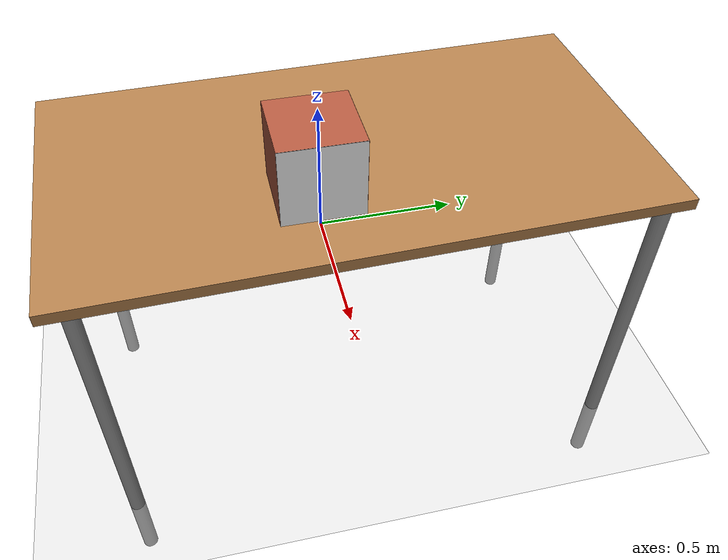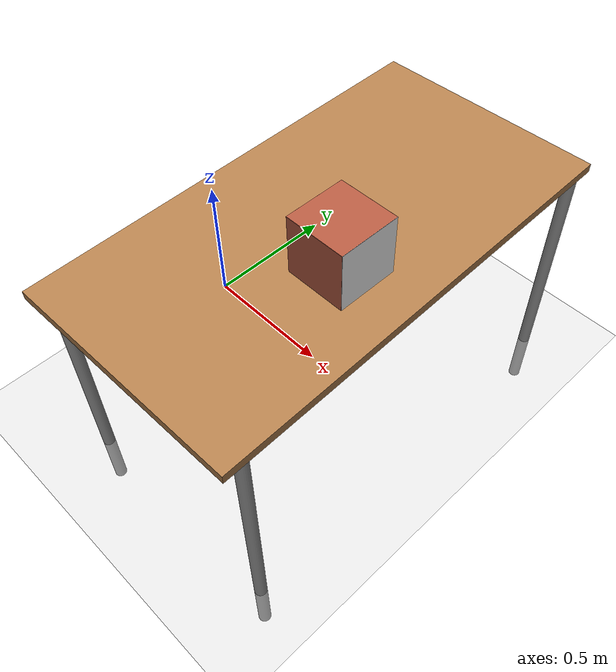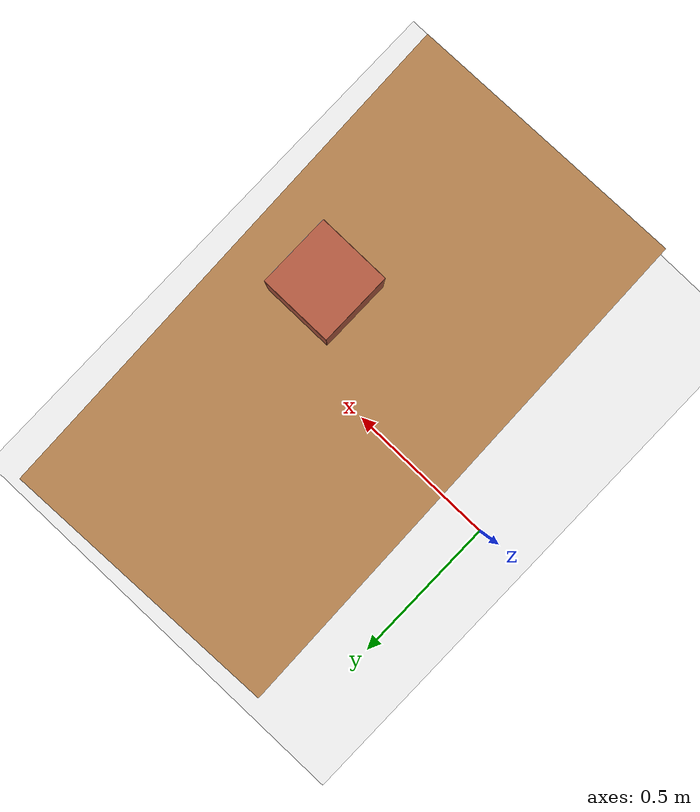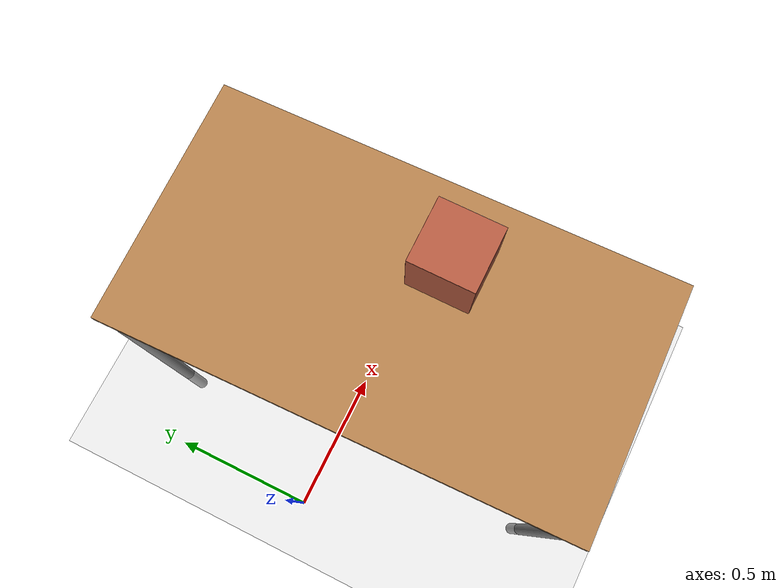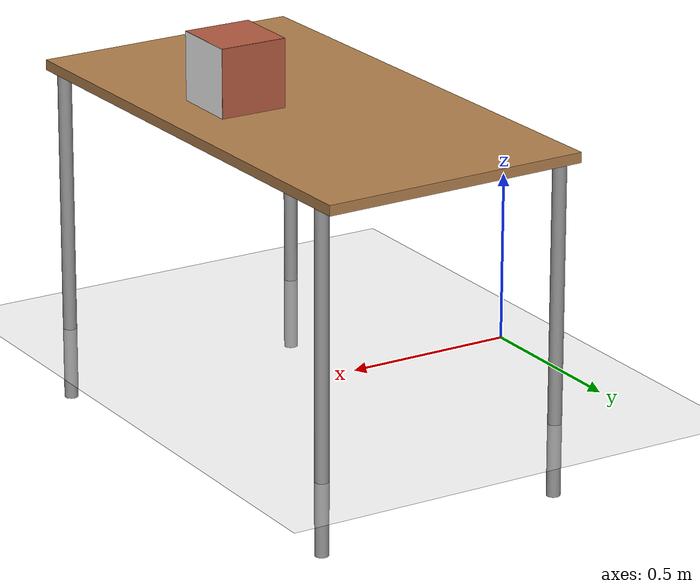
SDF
<sdf version="1.7">
 <world name="default">
  <light name="sun" type="directional">
   <pose>0 0 10 0 -0 0</pose>
   <diffuse>0.8 0.8 0.8 1</diffuse>
   <specular>0.2 0.2 0.2 1</specular>
   <attenuation>
    <range>1000</range>
    <constant>0.9</constant>
    <linear>0.01</linear>
    <quadratic>0.001</quadratic>
   </attenuation>
   <direction>-0.5 0.1 -0.9</direction>
   <spot><inner_angle>0</inner_angle><outer_angle>0</outer_angle><falloff>0</falloff></spot>
  </light>
  <model name="ground_plane">
   <static>1</static>
   <link name="link">
    <collision name="collision">
     <geometry><plane><normal>0 0 1</normal><size>100 100</size></plane></geometry>
     <surface><friction><ode><mu>100</mu><mu2>50</mu2></ode></friction></surface>
    </collision>
    <visual name="visual">
     <cast_shadows>0</cast_shadows>
     <geometry><plane><normal>0 0 1</normal><size>100 100</size></plane></geometry>
     <material>
      <script><uri>file://media/materials/scripts/gazebo.material</uri><name>Gazebo/Grey</name></script>
     </material>
    </visual>
   </link>
  </model>
  <gravity>0 0 -9.8</gravity>
  <magnetic_field>6e-06 2.3e-05 -4.2e-05</magnetic_field>
  <atmosphere type="adiabatic"/>
  <physics type="ode">
   <max_step_size>0.001</max_step_size>
   <real_time_factor>1</real_time_factor>
   <real_time_update_rate>1000</real_time_update_rate>
  </physics>
  <scene><ambient>0.8 0.8 0.8 1</ambient><background>0.7 0.7 0.7 1</background><shadows>1</shadows></scene>
  <audio><device>default</device></audio>
  <spherical_coordinates>
   <surface_model>EARTH_WGS84</surface_model>
   <latitude_deg>0</latitude_deg>
   <longitude_deg>0</longitude_deg>
   <elevation>0</elevation>
   <heading_deg>0</heading_deg>
  </spherical_coordinates>
  <model name="table">
   <static>1</static>
   <link name="link">
    <collision name="surface">
     <pose>0 0 1 0 -0 0</pose>
     <geometry><box><size>1.5 0.8 0.03</size></box></geometry>
     <surface><friction><ode><mu>0.6</mu><mu2>0.6</mu2></ode></friction></surface>
    </collision>
    <visual name="visual1">
     <pose>0 0 1 0 -0 0</pose>
     <geometry><box><size>1.5 0.8 0.03</size></box></geometry>
     <material>
      <script><uri>file://media/materials/scripts/gazebo.material</uri><name>Gazebo/Wood</name></script>
     </material>
    </visual>
    <collision name="front_left_leg">
     <pose>0.68 0.38 0.5 0 -0 0</pose>
     <geometry><cylinder><radius>0.02</radius><length>1</length></cylinder></geometry>
    </collision>
    <visual name="front_left_leg">
     <pose>0.68 0.38 0.5 0 -0 0</pose>
     <geometry><cylinder><radius>0.02</radius><length>1</length></cylinder></geometry>
     <material>
      <script><uri>file://media/materials/scripts/gazebo.material</uri><name>Gazebo/Grey</name></script>
     </material>
    </visual>
    <collision name="front_right_leg">
     <pose>0.68 -0.38 0.5 0 -0 0</pose>
     <geometry><cylinder><radius>0.02</radius><length>1</length></cylinder></geometry>
    </collision>
    <visual name="front_right_leg">
     <pose>0.68 -0.38 0.5 0 -0 0</pose>
     <geometry><cylinder><radius>0.02</radius><length>1</length></cylinder></geometry>
     <material>
      <script><uri>file://media/materials/scripts/gazebo.material</uri><name>Gazebo/Grey</name></script>
     </material>
    </visual>
    <collision name="back_right_leg">
     <pose>-0.68 -0.38 0.5 0 -0 0</pose>
     <geometry><cylinder><radius>0.02</radius><length>1</length></cylinder></geometry>
    </collision>
    <visual name="back_right_leg">
     <pose>-0.68 -0.38 0.5 0 -0 0</pose>
     <geometry><cylinder><radius>0.02</radius><length>1</length></cylinder></geometry>
     <material>
      <script><uri>file://media/materials/scripts/gazebo.material</uri><name>Gazebo/Grey</name></script>
     </material>
    </visual>
    <collision name="back_left_leg">
     <pose>-0.68 0.38 0.5 0 -0 0</pose>
     <geometry><cylinder><radius>0.02</radius><length>1</length></cylinder></geometry>
    </collision>
    <visual name="back_left_leg">
     <pose>-0.68 0.38 0.5 0 -0 0</pose>
     <geometry><cylinder><radius>0.02</radius><length>1</length></cylinder></geometry>
     <material>
      <script><uri>file://media/materials/scripts/gazebo.material</uri><name>Gazebo/Grey</name></script>
     </material>
    </visual>
   </link>
   <pose>0.628743 -0.054706 -0.216115 0 0 -1.54736</pose>
  </model>
  <plugin name="gazebo_link_attacher" filename="libgazebo_link_attacher.so"/>
  <plugin name="gazebo_ros_init" filename="libgazebo_ros_init.so"/>
  <plugin name="gazebo_ros_factory" filename="libgazebo_ros_factory.so"/>
  <model name="box_0">
   <pose>0.789488 -0.158794 0.898884 0 -0 0</pose>
   <static>0</static>
   <link name="link">
    <inertial>
     <mass>0.5</mass>
     <inertia>
      <ixx>0.006667</ixx>
      <iyy>0.006667</iyy>
      <izz>0.006667</izz>
      <ixy>0</ixy>
      <ixz>0</ixz>
      <iyz>0</iyz>
     </inertia>
    </inertial>
    <collision name="collision">
     <geometry><box><size>0.2 0.2 0.2</size></box></geometry>
     <surface>
      <friction><ode><mu>0.8</mu><mu2>0.8</mu2></ode></friction>
      <contact><ode><kp>1e+06</kp><kd>100</kd></ode></contact>
     </surface>
    </collision>
    <visual name="visual_front">
     <pose>0.1 0 0 0 -0 0</pose>
     <geometry><box><size>0.001 0.2 0.2</size></box></geometry>
     <material>
      <ambient>1 1 1 1</ambient>
      <diffuse>1 1 1 1</diffuse>
      <specular>0.1 0.1 0.1 1</specular>
      <pbr><metal><albedo_map>aruco_0.png</albedo_map></metal></pbr>
     </material>
    </visual>
    <visual name="visual_back">
     <pose>-0.1 0 0 0 -0 0</pose>
     <geometry><box><size>0.001 0.2 0.2</size></box></geometry>
     <material>
      <ambient>0.6 0.3 0.2 1</ambient>
      <diffuse>0.7 0.35 0.25 1</diffuse>
      <specular>0.1 0.05 0.05 1</specular>
     </material>
    </visual>
    <visual name="visual_left">
     <pose>0 0.1 0 0 -0 0</pose>
     <geometry><box><size>0.2 0.001 0.2</size></box></geometry>
     <material>
      <ambient>0.6 0.3 0.2 1</ambient>
      <diffuse>0.7 0.35 0.25 1</diffuse>
      <specular>0.1 0.05 0.05 1</specular>
     </material>
    </visual>
    <visual name="visual_right">
     <pose>0 -0.1 0 0 -0 0</pose>
     <geometry><box><size>0.2 0.001 0.2</size></box></geometry>
     <material>
      <ambient>0.6 0.3 0.2 1</ambient>
      <diffuse>0.7 0.35 0.25 1</diffuse>
      <specular>0.1 0.05 0.05 1</specular>
     </material>
    </visual>
    <visual name="visual_top">
     <pose>0 0 0.1 0 -0 0</pose>
     <geometry><box><size>0.2 0.2 0.001</size></box></geometry>
     <material>
      <ambient>0.6 0.3 0.2 1</ambient>
      <diffuse>0.7 0.35 0.25 1</diffuse>
      <specular>0.1 0.05 0.05 1</specular>
     </material>
    </visual>
    <visual name="visual_bottom">
     <pose>0 0 -0.1 0 -0 0</pose>
     <geometry><box><size>0.2 0.2 0.001</size></box></geometry>
     <material>
      <ambient>0.6 0.3 0.2 1</ambient>
      <diffuse>0.7 0.35 0.25 1</diffuse>
      <specular>0.1 0.05 0.05 1</specular>
     </material>
    </visual>
   </link>
  </model>
 </world>
</sdf>
